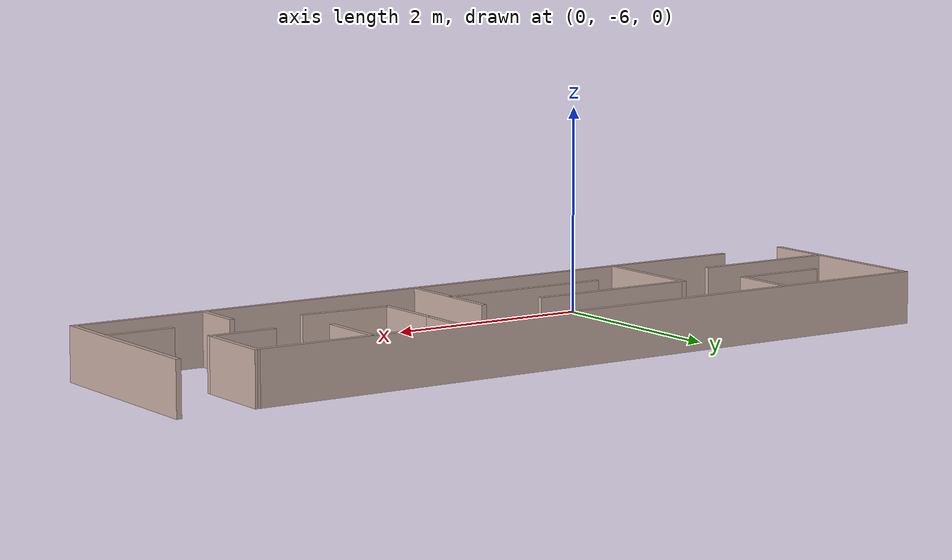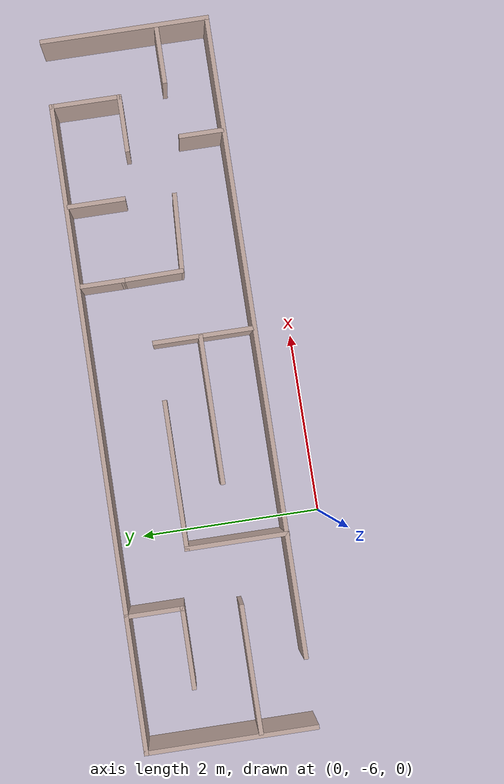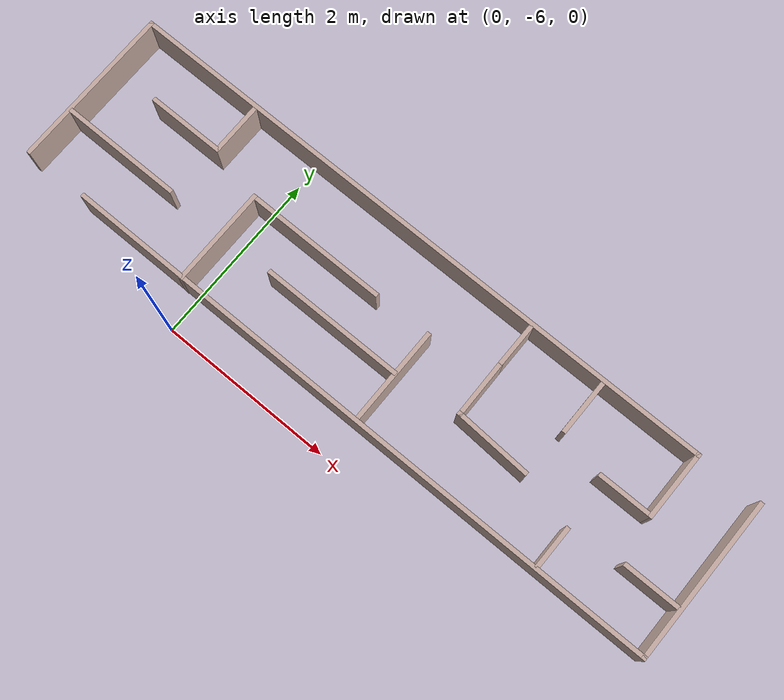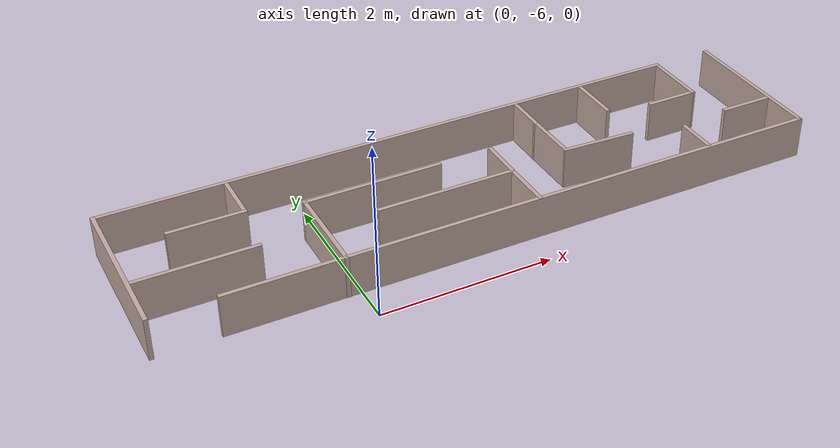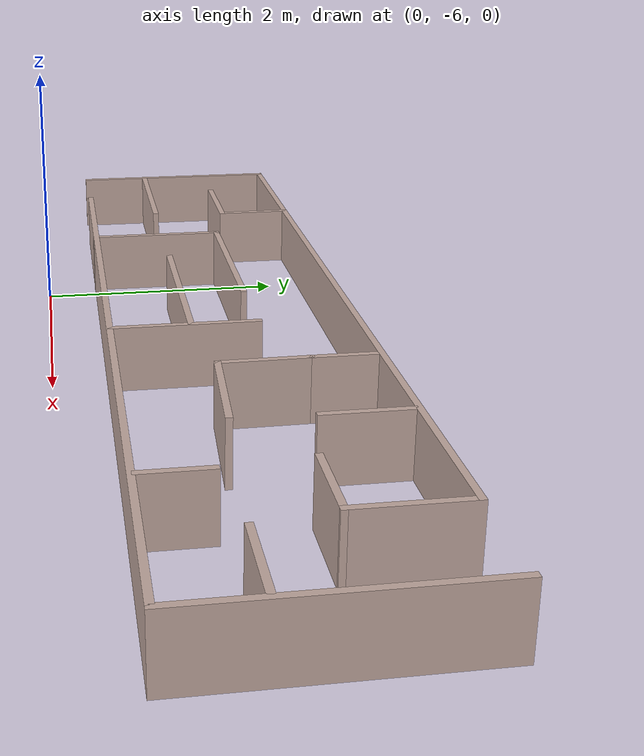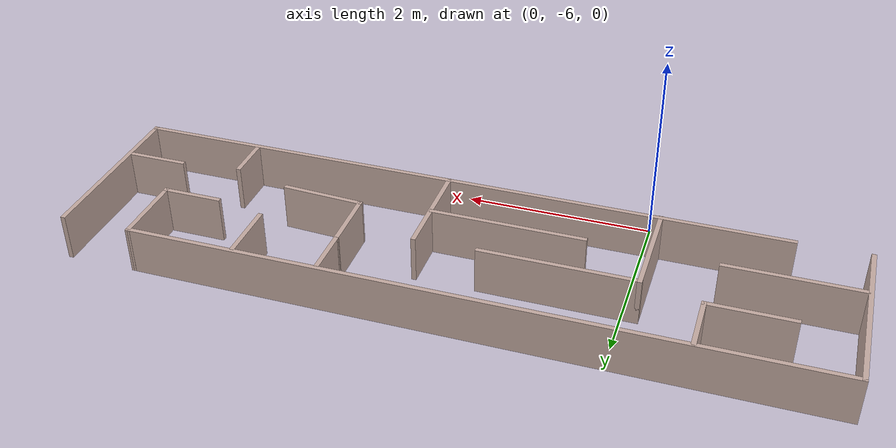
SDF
<?xml version='1.0'?>
<sdf version='1.6'>
  <model name='Labyrinthe'>
    <pose frame=''>1.69 -4.64298 0 0 -0 0</pose>
    <link name='Wall_0'>
      <collision name='Wall_0_Collision'>
        <geometry>
          <box>
            <size>1.89964 0.05 0.5</size>
          </box>
        </geometry>
        <pose frame=''>0 0 0.25 0 -0 0</pose>
      </collision>
      <visual name='Wall_0_Visual'>
        <pose frame=''>0 0 0.25 0 -0 0</pose>
        <geometry>
          <box>
            <size>1.89964 0.05 0.5</size>
          </box>
        </geometry>
        <material>
          <script>
            <uri>file://media/materials/scripts/gazebo.material</uri>
            <name>Gazebo/Grey</name>
          </script>
          <ambient>0.760784 0.662745 0.627451 1</ambient>
        </material>
      </visual>
      <pose frame=''>-3.925 0.001984 0 0 -0 1.5708</pose>
    </link>
    <link name='Wall_10'>
      <collision name='Wall_10_Collision'>
        <geometry>
          <box>
            <size>1.39957 0.05 0.5</size>
          </box>
        </geometry>
        <pose frame=''>0 0 0.25 0 -0 0</pose>
      </collision>
      <visual name='Wall_10_Visual'>
        <pose frame=''>0 0 0.25 0 -0 0</pose>
        <geometry>
          <box>
            <size>1.39957 0.05 0.5</size>
          </box>
        </geometry>
        <material>
          <script>
            <uri>file://media/materials/scripts/gazebo.material</uri>
            <name>Gazebo/Grey</name>
          </script>
          <ambient>0.760784 0.662745 0.627451 1</ambient>
        </material>
      </visual>
      <pose frame=''>-3.218 -0.322017 0 0 -0 0</pose>
    </link>
    <link name='Wall_12'>
      <collision name='Wall_12_Collision'>
        <geometry>
          <box>
            <size>1.15 0.05 0.5</size>
          </box>
        </geometry>
        <pose frame=''>0 0 0.25 0 -0 0</pose>
      </collision>
      <visual name='Wall_12_Visual'>
        <pose frame=''>0 0 0.25 0 -0 0</pose>
        <geometry>
          <box>
            <size>1.15 0.05 0.5</size>
          </box>
        </geometry>
        <material>
          <script>
            <uri>file://media/materials/scripts/gazebo.material</uri>
            <name>Gazebo/Grey</name>
          </script>
          <ambient>0.760784 0.662745 0.627451 1</ambient>
        </material>
      </visual>
      <pose frame=''>-1.842 -0.377016 0 0 -0 1.5708</pose>
    </link>
    <link name='Wall_14'>
      <collision name='Wall_14_Collision'>
        <geometry>
          <box>
            <size>0.9 0.05 0.5</size>
          </box>
        </geometry>
        <pose frame=''>0 0 0.25 0 -0 0</pose>
      </collision>
      <visual name='Wall_14_Visual'>
        <pose frame=''>0 0 0.25 0 -0 0</pose>
        <geometry>
          <box>
            <size>0.9 0.05 0.5</size>
          </box>
        </geometry>
        <material>
          <script>
            <uri>file://media/materials/scripts/gazebo.material</uri>
            <name>Gazebo/Grey</name>
          </script>
          <ambient>0.760784 0.662745 0.627451 1</ambient>
        </material>
      </visual>
      <pose frame=''>-2.89 0.315983 0 0 -0 0</pose>
    </link>
    <link name='Wall_15'>
      <collision name='Wall_15_Collision'>
        <geometry>
          <box>
            <size>0.649502 0.05 0.5</size>
          </box>
        </geometry>
        <pose frame=''>0 0 0.25 0 -0 0</pose>
      </collision>
      <visual name='Wall_15_Visual'>
        <pose frame=''>0 0 0.25 0 -0 0</pose>
        <geometry>
          <box>
            <size>0.649502 0.05 0.5</size>
          </box>
        </geometry>
        <material>
          <script>
            <uri>file://media/materials/scripts/gazebo.material</uri>
            <name>Gazebo/Grey</name>
          </script>
          <ambient>0.760784 0.662745 0.627451 1</ambient>
        </material>
      </visual>
      <pose frame=''>-2.465 0.615984 0 0 -0 1.5708</pose>
    </link>
    <link name='Wall_18'>
      <collision name='Wall_18_Collision'>
        <geometry>
          <box>
            <size>1.65002 0.05 0.5</size>
          </box>
        </geometry>
        <pose frame=''>0 0 0.25 0 -0 0</pose>
      </collision>
      <visual name='Wall_18_Visual'>
        <pose frame=''>0 0 0.25 0 -0 0</pose>
        <geometry>
          <box>
            <size>1.65002 0.05 0.5</size>
          </box>
        </geometry>
        <material>
          <script>
            <uri>file://media/materials/scripts/gazebo.material</uri>
            <name>Gazebo/Grey</name>
          </script>
          <ambient>0.760784 0.662745 0.627451 1</ambient>
        </material>
      </visual>
      <pose frame=''>-1.042 0.172984 0 0 -0 0</pose>
    </link>
    <link name='Wall_2'>
      <collision name='Wall_2_Collision'>
        <geometry>
          <box>
            <size>1.9 0.05 0.5</size>
          </box>
        </geometry>
        <pose frame=''>0 0 0.25 0 -0 0</pose>
      </collision>
      <visual name='Wall_2_Visual'>
        <pose frame=''>0 0 0.25 0 -0 0</pose>
        <geometry>
          <box>
            <size>1.9 0.05 0.5</size>
          </box>
        </geometry>
        <material>
          <script>
            <uri>file://media/materials/scripts/gazebo.material</uri>
            <name>Gazebo/Grey</name>
          </script>
          <ambient>0.760784 0.662745 0.627451 1</ambient>
        </material>
      </visual>
      <pose frame=''>3.925 0.001984 0 0 0 -1.5708</pose>
    </link>
    <link name='Wall_20'>
      <collision name='Wall_20_Collision'>
        <geometry>
          <box>
            <size>1.15 0.05 0.5</size>
          </box>
        </geometry>
        <pose frame=''>0 0 0.25 0 -0 0</pose>
      </collision>
      <visual name='Wall_20_Visual'>
        <pose frame=''>0 0 0.25 0 -0 0</pose>
        <geometry>
          <box>
            <size>1.15 0.05 0.5</size>
          </box>
        </geometry>
        <material>
          <script>
            <uri>file://media/materials/scripts/gazebo.material</uri>
            <name>Gazebo/Grey</name>
          </script>
          <ambient>0.760784 0.662745 0.627451 1</ambient>
        </material>
      </visual>
      <pose frame=''>0.42 -0.366016 0 0 0 -1.5708</pose>
    </link>
    <link name='Wall_22'>
      <collision name='Wall_22_Collision'>
        <geometry>
          <box>
            <size>1.65027 0.05 0.5</size>
          </box>
        </geometry>
        <pose frame=''>0 0 0.25 0 -0 0</pose>
      </collision>
      <visual name='Wall_22_Visual'>
        <pose frame=''>0 0 0.25 0 -0 0</pose>
        <geometry>
          <box>
            <size>1.65027 0.05 0.5</size>
          </box>
        </geometry>
        <material>
          <script>
            <uri>file://media/materials/scripts/gazebo.material</uri>
            <name>Gazebo/Grey</name>
          </script>
          <ambient>0.760784 0.662745 0.627451 1</ambient>
        </material>
      </visual>
      <pose frame=''>-0.393 -0.322017 0 0 -0 3.14159</pose>
    </link>
    <link name='Wall_24'>
      <collision name='Wall_24_Collision'>
        <geometry>
          <box>
            <size>0.695413 0.05 0.5</size>
          </box>
        </geometry>
        <pose frame=''>0 0 0.25 0 -0 0</pose>
      </collision>
      <visual name='Wall_24_Visual'>
        <pose frame=''>0 0 0.25 0 -0 0</pose>
        <geometry>
          <box>
            <size>0.695413 0.05 0.5</size>
          </box>
        </geometry>
        <material>
          <script>
            <uri>file://media/materials/scripts/gazebo.material</uri>
            <name>Gazebo/Grey</name>
          </script>
          <ambient>0.760784 0.662745 0.627451 1</ambient>
        </material>
      </visual>
      <pose frame=''>1.1559 0.101335 0 0 0 -1.55908</pose>
    </link>
    <link name='Wall_25'>
      <collision name='Wall_25_Collision'>
        <geometry>
          <box>
            <size>0.893659 0.05 0.5</size>
          </box>
        </geometry>
        <pose frame=''>0 0 0.25 0 -0 0</pose>
      </collision>
      <visual name='Wall_25_Visual'>
        <pose frame=''>0 0 0.25 0 -0 0</pose>
        <geometry>
          <box>
            <size>0.893659 0.05 0.5</size>
          </box>
        </geometry>
        <material>
          <script>
            <uri>file://media/materials/scripts/gazebo.material</uri>
            <name>Gazebo/Grey</name>
          </script>
          <ambient>0.760784 0.662745 0.627451 1</ambient>
        </material>
      </visual>
      <pose frame=''>1.5809 -0.251595 0 0 0 -0.053802</pose>
    </link>
    <link name='Wall_27'>
      <collision name='Wall_27_Collision'>
        <geometry>
          <box>
            <size>0.650174 0.05 0.5</size>
          </box>
        </geometry>
        <pose frame=''>0 0 0.25 0 -0 0</pose>
      </collision>
      <visual name='Wall_27_Visual'>
        <pose frame=''>0 0 0.25 0 -0 0</pose>
        <geometry>
          <box>
            <size>0.650174 0.05 0.5</size>
          </box>
        </geometry>
        <material>
          <script>
            <uri>file://media/materials/scripts/gazebo.material</uri>
            <name>Gazebo/Grey</name>
          </script>
          <ambient>0.760784 0.662745 0.627451 1</ambient>
        </material>
      </visual>
      <pose frame=''>2.046 0.592983 0 0 0 -1.5708</pose>
    </link>
    <link name='Wall_29'>
      <collision name='Wall_29_Collision'>
        <geometry>
          <box>
            <size>0.650049 0.05 0.5</size>
          </box>
        </geometry>
        <pose frame=''>0 0 0.25 0 -0 0</pose>
      </collision>
      <visual name='Wall_29_Visual'>
        <pose frame=''>0 0 0.25 0 -0 0</pose>
        <geometry>
          <box>
            <size>0.650049 0.05 0.5</size>
          </box>
        </geometry>
        <material>
          <script>
            <uri>file://media/materials/scripts/gazebo.material</uri>
            <name>Gazebo/Grey</name>
          </script>
          <ambient>0.760784 0.662745 0.627451 1</ambient>
        </material>
      </visual>
      <pose frame=''>2.883 0.168984 0 0 -0 0</pose>
    </link>
    <link name='Wall_30'>
      <collision name='Wall_30_Collision'>
        <geometry>
          <box>
            <size>0.808001 0.05 0.5</size>
          </box>
        </geometry>
        <pose frame=''>0 0 0.25 0 -0 0</pose>
      </collision>
      <visual name='Wall_30_Visual'>
        <pose frame=''>0 0 0.25 0 -0 0</pose>
        <geometry>
          <box>
            <size>0.808001 0.05 0.5</size>
          </box>
        </geometry>
        <material>
          <script>
            <uri>file://media/materials/scripts/gazebo.material</uri>
            <name>Gazebo/Grey</name>
          </script>
          <ambient>0.760784 0.662745 0.627451 1</ambient>
        </material>
      </visual>
      <pose frame=''>3.1835 0.547984 0 0 -0 1.56948</pose>
    </link>
    <link name='Wall_32'>
      <collision name='Wall_32_Collision'>
        <geometry>
          <box>
            <size>0.5 0.05 0.5</size>
          </box>
        </geometry>
        <pose frame=''>0 0 0.25 0 -0 0</pose>
      </collision>
      <visual name='Wall_32_Visual'>
        <pose frame=''>0 0 0.25 0 -0 0</pose>
        <geometry>
          <box>
            <size>0.5 0.05 0.5</size>
          </box>
        </geometry>
        <material>
          <script>
            <uri>file://media/materials/scripts/gazebo.material</uri>
            <name>Gazebo/Grey</name>
          </script>
          <ambient>0.760784 0.662745 0.627451 1</ambient>
        </material>
      </visual>
      <pose frame=''>2.644 -0.668754 0 0 -0 1.5708</pose>
    </link>
    <link name='Wall_34'>
      <collision name='Wall_34_Collision'>
        <geometry>
          <box>
            <size>0.649762 0.05 0.5</size>
          </box>
        </geometry>
        <pose frame=''>0 0 0.25 0 -0 0</pose>
      </collision>
      <visual name='Wall_34_Visual'>
        <pose frame=''>0 0 0.25 0 -0 0</pose>
        <geometry>
          <box>
            <size>0.649762 0.05 0.5</size>
          </box>
        </geometry>
        <material>
          <script>
            <uri>file://media/materials/scripts/gazebo.material</uri>
            <name>Gazebo/Grey</name>
          </script>
          <ambient>0.760784 0.662745 0.627451 1</ambient>
        </material>
      </visual>
      <pose frame=''>3.583 -0.354017 0 0 -0 3.14159</pose>
    </link>
    <link name='Wall_36'>
      <collision name='Wall_36_Collision'>
        <geometry>
          <box>
            <size>0.5 0.05 0.5</size>
          </box>
        </geometry>
        <pose frame=''>0 0 0.25 0 -0 0</pose>
      </collision>
      <visual name='Wall_36_Visual'>
        <pose frame=''>0 0 0.25 0 -0 0</pose>
        <geometry>
          <box>
            <size>0.5 0.05 0.5</size>
          </box>
        </geometry>
        <material>
          <script>
            <uri>file://media/materials/scripts/gazebo.material</uri>
            <name>Gazebo/Grey</name>
          </script>
          <ambient>0.760784 0.662745 0.627451 1</ambient>
        </material>
      </visual>
      <pose frame=''>1.15212 0.656581 0 0 -0 1.5708</pose>
    </link>
    <link name='Wall_6'>
      <collision name='Wall_6_Collision'>
        <geometry>
          <box>
            <size>7.15884 0.05 0.5</size>
          </box>
        </geometry>
        <pose frame=''>0 0 0.25 0 -0 0</pose>
      </collision>
      <visual name='Wall_6_Visual'>
        <pose frame=''>0 0 0.25 0 -0 0</pose>
        <geometry>
          <box>
            <size>7.15884 0.05 0.5</size>
          </box>
        </geometry>
        <material>
          <script>
            <uri>file://media/materials/scripts/gazebo.material</uri>
            <name>Gazebo/Grey</name>
          </script>
          <ambient>0.760784 0.662745 0.627451 1</ambient>
        </material>
      </visual>
      <pose frame=''>-0.3705 0.926983 0 0 -0 0</pose>
    </link>
    <link name='Wall_8'>
      <collision name='Wall_8_Collision'>
        <geometry>
          <box>
            <size>7.14985 0.05 0.5</size>
          </box>
        </geometry>
        <pose frame=''>0 0 0.25 0 -0 0</pose>
      </collision>
      <visual name='Wall_8_Visual'>
        <pose frame=''>0 0 0.25 0 -0 0</pose>
        <geometry>
          <box>
            <size>7.14985 0.05 0.5</size>
          </box>
        </geometry>
        <material>
          <script>
            <uri>file://media/materials/scripts/gazebo.material</uri>
            <name>Gazebo/Grey</name>
          </script>
          <ambient>0.760784 0.662745 0.627451 1</ambient>
        </material>
      </visual>
      <pose frame=''>0.375 -0.923016 0 0 -0 3.14159</pose>
    </link>
    <static>1</static>
  </model>
</sdf>
